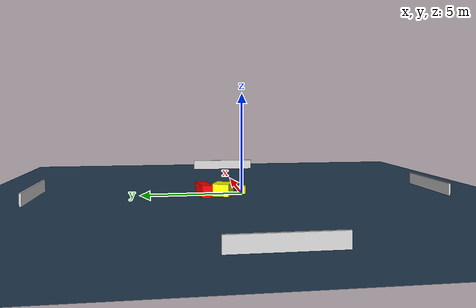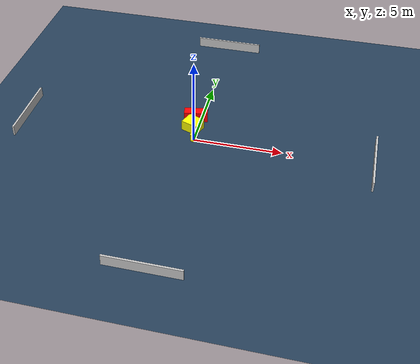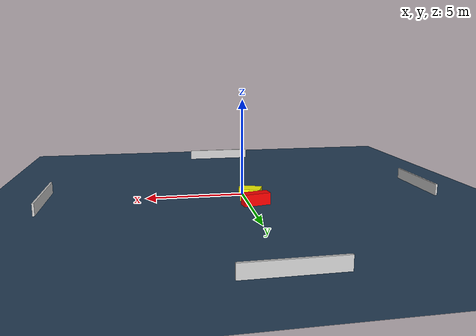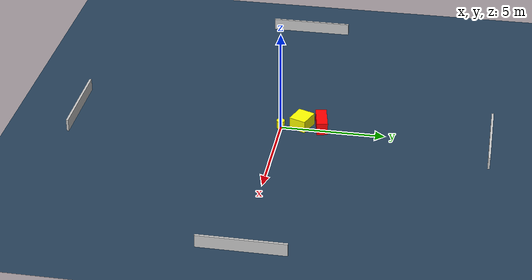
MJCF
<?xml version="1.0" ?>
<mujoco model="generated_environment">
  <option timestep="0.01" integrator="RK4" cone="elliptic"/>
  <default>
    <geom density="1"/>
  </default>
  <asset>
    <texture builtin="gradient" height="3072" name="skybox" rgb1="0.3 0.5 0.7" rgb2="0 0 0" type="skybox" width="512"/>
    <texture builtin="checker" height="300" name="groundplane" rgb1="0.2 0.3 0.4" rgb2="0.1 0.2 0.3" type="2d" width="300"/>
    <material name="groundplane" reflectance="0.2" texrepeat="5 5" texture="groundplane"/>
  </asset>
  <worldbody>
    <light dir="0 0 -1" directional="true" pos="0 0 1.5"/>
    <geom condim="3" friction="0.5 0.005 0.001" material="groundplane" name="floor" pos="0 0 0" size="0 0 0.05" type="plane"/>
    <body name="walls">
      <geom name="wall_1" condim="4" pos="-10.0 0.0 0.3" rgba="0.800000011920929 0.800000011920929 0.800000011920929 1.0" size="0.05 2.0 0.3" type="box"/>
      <geom name="wall_2" condim="4" pos="10.0 0.0 0.3" rgba="0.800000011920929 0.800000011920929 0.800000011920929 1.0" size="0.05 2.0 0.3" type="box"/>
      <geom name="wall_3" condim="4" pos="0.0 -10.0 0.3" rgba="0.800000011920929 0.800000011920929 0.800000011920929 1.0" size="2.0 0.05 0.3" type="box"/>
      <geom name="wall_4" condim="4" pos="0.0 10.0 0.3" rgba="0.800000011920929 0.800000011920929 0.800000011920929 1.0" size="2.0 0.05 0.3" type="box"/>
    </body>
    <body name="robot">
      <joint name="joint_x" type="slide" pos="0 0 0" axis="1 0 0"/>
      <joint name="joint_y" type="slide" pos="0 0 0" axis="0 1 0"/>
      <geom name="robot" type="cylinder" pos="0.0 0.0 0.2" size="0.2 0.2 0.0" mass="5.0" friction="1.0 0.005 0.0001" condim="4" rgba="1.0 1.0 0.0 1.0"/>
    </body>
    <body name="obstacle_1_movable">
      <geom name="obstacle_1_movable" condim="4" pos="-0.28859498512667814 0.9896028751443825 0.3" euler="0 0 159.07753750213223" friction="0.0 0.005 0.001" rgba="1.0 1.0 0.0 1.0" size="0.4872826123690424 0.41893908814964265 0.3" type="box" mass="0.1"/>
      <joint type="free"/>
    </body>
    <body name="obstacle_2_static">
      <geom name="obstacle_2_static" condim="4" pos="-0.33125861665871226 1.9303951138796918 0.3" euler="0 0 281.00377960256645" friction="0.0 0.005 0.001" rgba="1.0 0.0 0.0 1.0" size="0.26407017237507924 0.6783111816516323 0.3" type="box"/>
    </body>
  </worldbody>
  <actuator>
    <motor name="actuator_x" joint="joint_x" gear="1" ctrlrange="-1 1"/>
    <motor name="actuator_y" joint="joint_y" gear="1" ctrlrange="-1 1"/>
  </actuator>
</mujoco>
